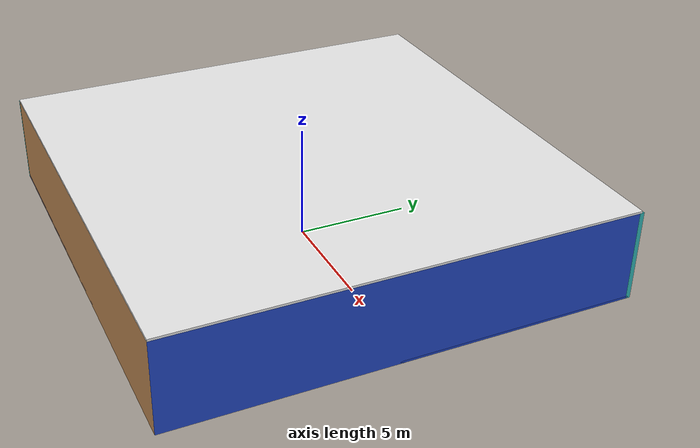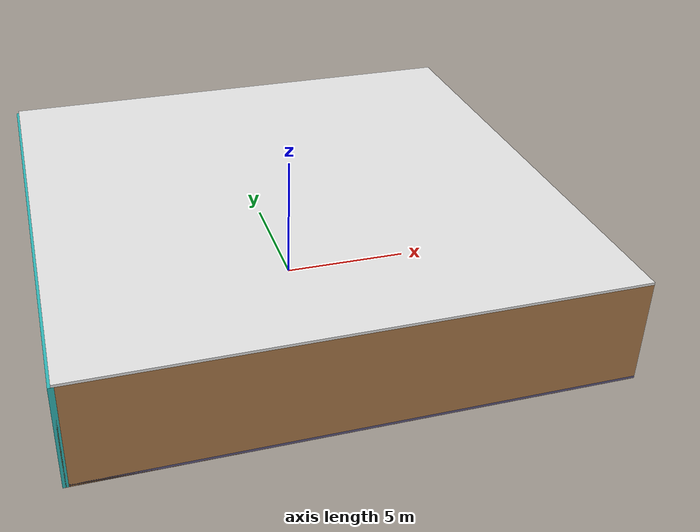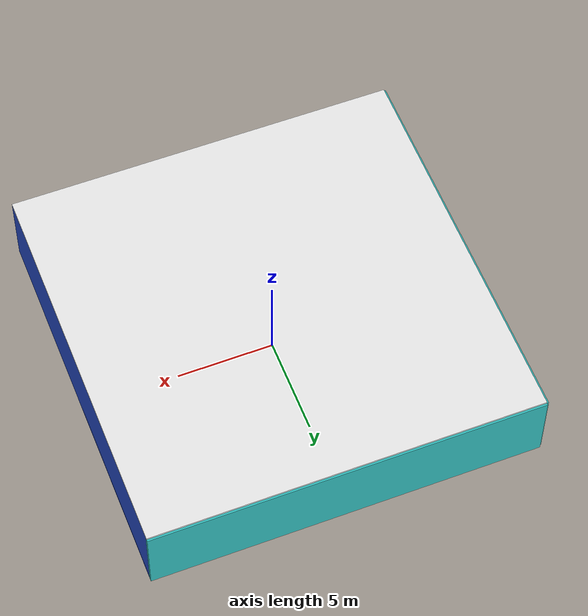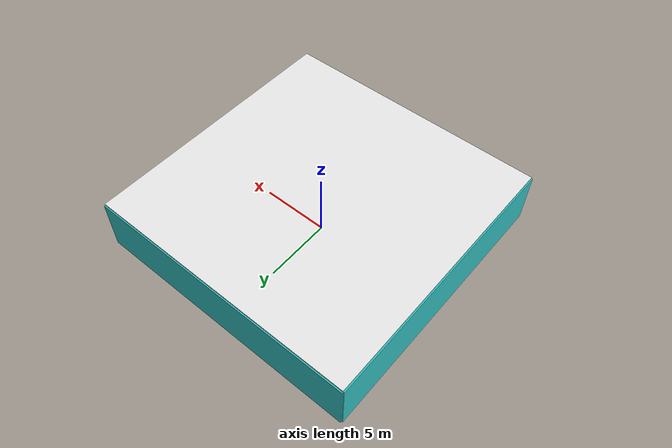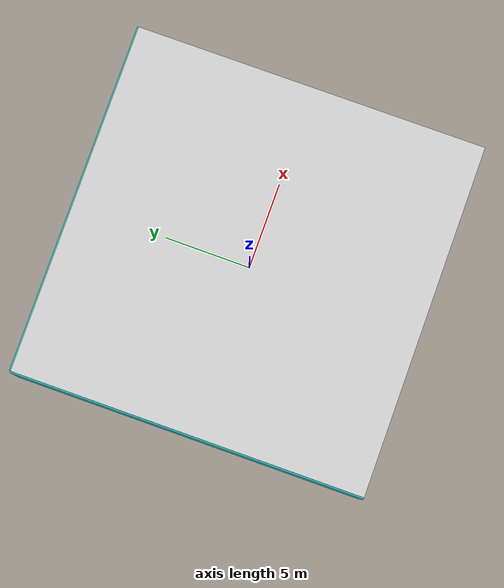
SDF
<sdf version="1.4">
 <world name="default">
  <physics type="ode">
   <max_step_size>0.001</max_step_size>
   <real_time_factor>1</real_time_factor>
   <real_time_update_rate>1000</real_time_update_rate>
   <gravity>0 0 -9.8</gravity>
  </physics>
  <scene><ambient>0.4 0.4 0.4 1</ambient><background>0.7 0.7 0.7 1</background><shadows>1</shadows></scene>
  <model name="Surrounding">
   <static>1</static>
   <link name="Ceiling">
    <collision name="Ceiling_Collision"><geometry><box><size>20 20 0.1</size></box></geometry></collision>
    <visual name="Ceiling_Visual">
     <geometry><box><size>20 20 0.1</size></box></geometry>
     <material>
      <script><uri>file://media/materials/scripts/gazebo.material</uri><name>Gazebo/WhiteGlow</name></script>
     </material>
    </visual>
    <pose>0 0 4.05 0 0 0</pose>
   </link>
   <link name="Wall_South">
    <collision name="Wall_South_Collision">
     <geometry><box><size>20 0 4</size></box></geometry>
     <pose>0 0 2 0 -0 0</pose>
    </collision>
    <visual name="Wall_South_Visual">
     <pose>0 0 2 0 -0 0</pose>
     <geometry><box><size>20 0 4</size></box></geometry>
     <material>
      <script><uri>file://media/materials/scripts/gazebo.material</uri><name>Gazebo/WoodFloor</name></script>
     </material>
    </visual>
    <velocity_decay><linear>0</linear><angular>0</angular></velocity_decay>
    <pose>0 -10 0 0 -0 0</pose>
   </link>
   <link name="Wall_East">
    <collision name="Wall_21_Collision">
     <geometry><box><size>20 0 4</size></box></geometry>
     <pose>0 0 2 0 -0 0</pose>
    </collision>
    <visual name="Wall_21_Visual">
     <pose>0 0 2 0 -0 0</pose>
     <geometry><box><size>20 0 4</size></box></geometry>
     <material>
      <script><uri>file://media/materials/scripts/gazebo.material</uri><name>Gazebo/Blue</name></script>
     </material>
    </visual>
    <velocity_decay><linear>0</linear><angular>0</angular></velocity_decay>
    <pose>10 0 0 0 -0 1.5708</pose>
   </link>
   <link name="Wall_North">
    <collision name="Wall_22_Collision">
     <geometry><box><size>20 0.2 4</size></box></geometry>
     <pose>0 0 2 0 -0 0</pose>
    </collision>
    <visual name="Wall_22_Visual">
     <pose>0 0 2 0 -0 0</pose>
     <geometry><box><size>20 0.2 4</size></box></geometry>
     <material>
      <script>
       <uri>file://media/materials/scripts/gazebo.material</uri>
       <name>Gazebo/TurquoiseGlowOutline</name>
      </script>
     </material>
    </visual>
    <velocity_decay><linear>0</linear><angular>0</angular></velocity_decay>
    <pose>0 10 0 0 -0 0</pose>
   </link>
   <link name="Wall_West">
    <collision name="Wall_23_Collision">
     <geometry><box><size>20 0.2 4</size></box></geometry>
     <pose>0 0 2 0 -0 0</pose>
    </collision>
    <visual name="Wall_23_Visual">
     <pose>0 0 2 0 -0 0</pose>
     <geometry><box><size>20 0.2 4</size></box></geometry>
     <material>
      <script><uri>file://media/materials/scripts/gazebo.material</uri><name>Gazebo/TurquoiseGlow</name></script>
     </material>
    </visual>
    <velocity_decay><linear>0</linear><angular>0</angular></velocity_decay>
    <pose>-10 0 0 0 0 -1.5708</pose>
   </link>
   <link name="Ground_link">
    <collision name="collision">
     <pose>0 0 .05 0 -0 0</pose>
     <geometry><box><size>20 20 0.1</size></box></geometry>
    </collision>
    <visual name="visual">
     <pose>0 0 .05 0 -0 0</pose>
     <geometry><box><size>20 20 0.1</size></box></geometry>
     <material>
      <script><uri>file://media/materials/scripts/gazebo.material</uri><name>Gazebo/BlueTransparent</name></script>
     </material>
    </visual>
   </link>
   <static>1</static>
  </model>
  <spherical_coordinates>
   <surface_model>EARTH_WGS84</surface_model>
   <latitude_deg>0</latitude_deg>
   <longitude_deg>0</longitude_deg>
   <elevation>0</elevation>
   <heading_deg>0</heading_deg>
  </spherical_coordinates>
  <light name="lightball_0" type="diffuse">
   <diffuse>0.8 0.8 0.8 1</diffuse>
   <specular>0.2 0.2 0.2 1</specular>
   <attenuation>
    <range>100</range>
    <constant>0.7</constant>
    <linear>0.01</linear>
    <quadratic>0.001</quadratic>
   </attenuation>
   <direction>-0.5 0.1 -0.9</direction>
   <pose>-9.91997637096 3.48719358024 2.23648107796 0 0 0</pose>
  </light>
  <light name="lightball_1" type="diffuse">
   <diffuse>0.8 0.8 0.8 1</diffuse>
   <specular>0.2 0.2 0.2 1</specular>
   <attenuation>
    <range>100</range>
    <constant>0.7</constant>
    <linear>0.01</linear>
    <quadratic>0.001</quadratic>
   </attenuation>
   <direction>-0.5 0.1 -0.9</direction>
   <pose>8.19378131305 9.68581586586 1.90073297149 0 0 0</pose>
  </light>
  <light name="lightball_2" type="diffuse">
   <diffuse>0.8 0.8 0.8 1</diffuse>
   <specular>0.2 0.2 0.2 1</specular>
   <attenuation>
    <range>100</range>
    <constant>0.7</constant>
    <linear>0.01</linear>
    <quadratic>0.001</quadratic>
   </attenuation>
   <direction>-0.5 0.1 -0.9</direction>
   <pose>-9.9208444812 0.0148084633017 1.06808306691 0 0 0</pose>
  </light>
  <light name="lightball_3" type="diffuse">
   <diffuse>0.8 0.8 0.8 1</diffuse>
   <specular>0.2 0.2 0.2 1</specular>
   <attenuation>
    <range>100</range>
    <constant>0.7</constant>
    <linear>0.01</linear>
    <quadratic>0.001</quadratic>
   </attenuation>
   <direction>-0.5 0.1 -0.9</direction>
   <pose>-8.89897516719 2.72554201302 1.09680910451 0 0 0</pose>
  </light>
  <light name="lightball_4" type="diffuse">
   <diffuse>0.8 0.8 0.8 1</diffuse>
   <specular>0.2 0.2 0.2 1</specular>
   <attenuation>
    <range>100</range>
    <constant>0.7</constant>
    <linear>0.01</linear>
    <quadratic>0.001</quadratic>
   </attenuation>
   <direction>-0.5 0.1 -0.9</direction>
   <pose>-6.03800864218 -1.44724070035 2.30396123668 0 0 0</pose>
  </light>
  <light name="lightball_5" type="diffuse">
   <diffuse>0.8 0.8 0.8 1</diffuse>
   <specular>0.2 0.2 0.2 1</specular>
   <attenuation>
    <range>100</range>
    <constant>0.7</constant>
    <linear>0.01</linear>
    <quadratic>0.001</quadratic>
   </attenuation>
   <direction>-0.5 0.1 -0.9</direction>
   <pose>1.08611244572 7.84308878803 3.20608489267 0 0 0</pose>
  </light>
  <light name="lightball_6" type="diffuse">
   <diffuse>0.8 0.8 0.8 1</diffuse>
   <specular>0.2 0.2 0.2 1</specular>
   <attenuation>
    <range>100</range>
    <constant>0.7</constant>
    <linear>0.01</linear>
    <quadratic>0.001</quadratic>
   </attenuation>
   <direction>-0.5 0.1 -0.9</direction>
   <pose>-0.11693195405 -4.50898095283 0.843912644619 0 0 0</pose>
  </light>
  <light name="lightball_7" type="diffuse">
   <diffuse>0.8 0.8 0.8 1</diffuse>
   <specular>0.2 0.2 0.2 1</specular>
   <attenuation>
    <range>100</range>
    <constant>0.7</constant>
    <linear>0.01</linear>
    <quadratic>0.001</quadratic>
   </attenuation>
   <direction>-0.5 0.1 -0.9</direction>
   <pose>2.02930308287 5.71867883986 2.27868145809 0 0 0</pose>
  </light>
  <light name="lightball_8" type="diffuse">
   <diffuse>0.8 0.8 0.8 1</diffuse>
   <specular>0.2 0.2 0.2 1</specular>
   <attenuation>
    <range>100</range>
    <constant>0.7</constant>
    <linear>0.01</linear>
    <quadratic>0.001</quadratic>
   </attenuation>
   <direction>-0.5 0.1 -0.9</direction>
   <pose>8.47156402306 -7.43278918168 2.40610395991 0 0 0</pose>
  </light>
  <light name="lightball_9" type="diffuse">
   <diffuse>0.8 0.8 0.8 1</diffuse>
   <specular>0.2 0.2 0.2 1</specular>
   <attenuation>
    <range>100</range>
    <constant>0.7</constant>
    <linear>0.01</linear>
    <quadratic>0.001</quadratic>
   </attenuation>
   <direction>-0.5 0.1 -0.9</direction>
   <pose>6.21751369183 9.78104743362 3.64657367086 0 0 0</pose>
  </light>
  <light name="lightball_10" type="diffuse">
   <diffuse>0.8 0.8 0.8 1</diffuse>
   <specular>0.2 0.2 0.2 1</specular>
   <attenuation>
    <range>100</range>
    <constant>0.7</constant>
    <linear>0.01</linear>
    <quadratic>0.001</quadratic>
   </attenuation>
   <direction>-0.5 0.1 -0.9</direction>
   <pose>-9.52697213045 4.58156102697 2.42532953264 0 0 0</pose>
  </light>
  <include><uri>model://table</uri><pose>-4.97757449805 0.647456167942 0 0 0 1.51017678531</pose></include>
  <include><uri>model://cabinet</uri><pose>-2.56475563342 -5.41305328845 0 0 0 2.73145604192</pose></include>
 </world>
</sdf>

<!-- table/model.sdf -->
<sdf version="1.5">
  <model name="table">
    <static>true</static>
    <link name="link">
      <collision name="surface">
        <pose>0 0 1.0 0 0 0</pose>
        <geometry>
          <box>
            <size>1.5 0.8 0.03</size>
          </box>
        </geometry>
        <surface>
          <friction>
            <ode>
              <mu>0.6</mu>
              <mu2>0.6</mu2>
            </ode>
          </friction>
        </surface>
      </collision>
      <visual name="visual1">
        <pose>0 0 1.0 0 0 0</pose>
        <geometry>
          <box>
            <size>1.5 0.8 0.03</size>
          </box>
        </geometry>
        <material>
          <script>
            <uri>model://media/materials/scripts/gazebo.material</uri>
            <name>Gazebo/Wood</name>
          </script>
        </material>
      </visual>
      <collision name="front_left_leg">
        <pose>0.68 0.38 0.5 0 0 0</pose>
        <geometry>
          <cylinder>
            <radius>0.02</radius>
            <length>1.0</length>
          </cylinder>
        </geometry>
      </collision>
      <visual name="front_left_leg">
        <pose>0.68 0.38 0.5 0 0 0</pose>
        <geometry>
          <cylinder>
            <radius>0.02</radius>
            <length>1.0</length>
          </cylinder>
        </geometry>
        <material>
          <script>
            <uri>model://media/materials/scripts/gazebo.material</uri>
            <name>Gazebo/Grey</name>
          </script>
        </material>
      </visual>
      <collision name="front_right_leg">
        <pose>0.68 -0.38 0.5 0 0 0</pose>
        <geometry>
          <cylinder>
            <radius>0.02</radius>
            <length>1.0</length>
          </cylinder>
        </geometry>
      </collision>
      <visual name="front_right_leg">
        <pose>0.68 -0.38 0.5 0 0 0</pose>
        <geometry>
          <cylinder>
            <radius>0.02</radius>
            <length>1.0</length>
          </cylinder>
        </geometry>
        <material>
          <script>
            <uri>model://media/materials/scripts/gazebo.material</uri>
            <name>Gazebo/Grey</name>
          </script>
        </material>
      </visual>
      <collision name="back_right_leg">
        <pose>-0.68 -0.38 0.5 0 0 0</pose>
        <geometry>
          <cylinder>
            <radius>0.02</radius>
            <length>1.0</length>
          </cylinder>
        </geometry>
      </collision>
      <visual name="back_right_leg">
        <pose>-0.68 -0.38 0.5 0 0 0</pose>
        <geometry>
          <cylinder>
            <radius>0.02</radius>
            <length>1.0</length>
          </cylinder>
        </geometry>
        <material>
          <script>
            <uri>model://media/materials/scripts/gazebo.material</uri>
            <name>Gazebo/Grey</name>
          </script>
        </material>
      </visual>
      <collision name="back_left_leg">
        <pose>-0.68 0.38 0.5 0 0 0</pose>
        <geometry>
          <cylinder>
            <radius>0.02</radius>
            <length>1.0</length>
          </cylinder>
        </geometry>
      </collision>
      <visual name="back_left_leg">
        <pose>-0.68 0.38 0.5 0 0 0</pose>
        <geometry>
          <cylinder>
            <radius>0.02</radius>
            <length>1.0</length>
          </cylinder>
        </geometry>
        <material>
          <script>
            <uri>model://media/materials/scripts/gazebo.material</uri>
            <name>Gazebo/Grey</name>
          </script>
        </material>
      </visual>
    </link>
  </model>
</sdf>

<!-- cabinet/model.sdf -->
<sdf version="1.5">
  <model name="cabinet">
    <static>true</static>
    <link name="cabinet_bottom_plate">
      <inertial>
        <pose>0 0 -1 0 0 0</pose>
        <inertia>
          <ixx>2.050000</ixx>
          <ixy>0</ixy>
          <ixz>0</ixz>
          <iyy>2.050000</iyy>
          <iyz>0</iyz>
          <izz>2.050000</izz>
        </inertia>
        <mass>25.000000</mass>
      </inertial>
      <collision name="cabinet_bottom_plate_geom">
        <pose>0 0 0.010000 0 0 0</pose>
        <geometry>
          <box>
            <size>0.450000 0.450000 0.020000</size>
          </box>
        </geometry>
      </collision>
      <visual name="cabinet_bottom_plate_geom_visual">
        <pose>0 0 0.010000 0 0 0</pose>
        <geometry>
          <box>
            <size>0.450000 0.450000 0.020000</size>
          </box>
        </geometry>
        <material>
          <script>
            <uri>model://media/materials/scripts/gazebo.material</uri>
            <name>Gazebo/Wood</name>
          </script>
        </material>
      </visual>
      <collision name="cabinet_bottom_plate_geom_cabinet_back_plate">
        <pose>0.235000 0 0.510000 0 0 0</pose>
        <geometry>
          <box>
            <size>0.020000 0.450000 1.020000</size>
          </box>
        </geometry>
      </collision>
      <visual name="cabinet_bottom_plate_geom_cabinet_back_plate_visual">
        <pose>0.235000 0 0.510000 0 0 0</pose>
        <geometry>
          <box>
            <size>0.020000 0.450000 1.020000</size>
          </box>
        </geometry>
        <material>
          <script>
            <uri>model://media/materials/scripts/gazebo.material</uri>
            <name>Gazebo/Wood</name>
          </script>
        </material>
      </visual>
      <collision name="cabinet_bottom_plate_geom_cabinet_left_plate">
        <pose>0 0.235000 0.510000 0 0 0</pose>
        <geometry>
          <box>
            <size>0.450000 0.020000 1.020000</size>
          </box>
        </geometry>
      </collision>
      <visual name="cabinet_bottom_plate_geom_cabinet_left_plate_visual">
        <pose>0 0.235000 0.510000 0 0 0</pose>
        <geometry>
          <box>
            <size>0.450000 0.020000 1.020000</size>
          </box>
        </geometry>
        <material>
          <script>
            <uri>model://media/materials/scripts/gazebo.material</uri>
            <name>Gazebo/Wood</name>
          </script>
        </material>
      </visual>
      <collision name="cabinet_bottom_plate_geom_cabinet_middle_plate">
        <pose>0 0 0.510000 0 0 0</pose>
        <geometry>
          <box>
            <size>0.450000 0.450000 0.020000</size>
          </box>
        </geometry>
      </collision>
      <visual name="cabinet_bottom_plate_geom_cabinet_middle_plate_visual">
        <pose>0 0 0.510000 0 0 0</pose>
        <geometry>
          <box>
            <size>0.450000 0.450000 0.020000</size>
          </box>
        </geometry>
        <material>
          <script>
            <uri>model://media/materials/scripts/gazebo.material</uri>
            <name>Gazebo/Wood</name>
          </script>
        </material>
      </visual>
      <collision name="cabinet_bottom_plate_geom_cabinet_right_plate">
        <pose>0 -0.235000 0.510000 0 0 0</pose>
        <geometry>
          <box>
            <size>0.450000 0.020000 1.020000</size>
          </box>
        </geometry>
      </collision>
      <visual name="cabinet_bottom_plate_geom_cabinet_right_plate_visual">
        <pose>0 -0.235000 0.510000 0 0 0</pose>
        <geometry>
          <box>
            <size>0.450000 0.020000 1.020000</size>
          </box>
        </geometry>
        <material>
          <script>
            <uri>model://media/materials/scripts/gazebo.material</uri>
            <name>Gazebo/Wood</name>
          </script>
        </material>
      </visual>
      <collision name="cabinet_bottom_plate_geom_cabinet_top_plate">
        <pose>0 0 1.010000 0 0 0</pose>
        <geometry>
          <box>
            <size>0.450000 0.450000 0.020000</size>
          </box>
        </geometry>
      </collision>
      <visual name="cabinet_bottom_plate_geom_cabinet_top_plate_visual">
        <pose>0 0 1.010000 0 0 0</pose>
        <geometry>
          <box>
            <size>0.450000 0.450000 0.020000</size>
          </box>
        </geometry>
        <material>
          <script>
            <uri>model://media/materials/scripts/gazebo.material</uri>
            <name>Gazebo/Wood</name>
          </script>
        </material>
      </visual>
    </link>
  </model>
</sdf>
